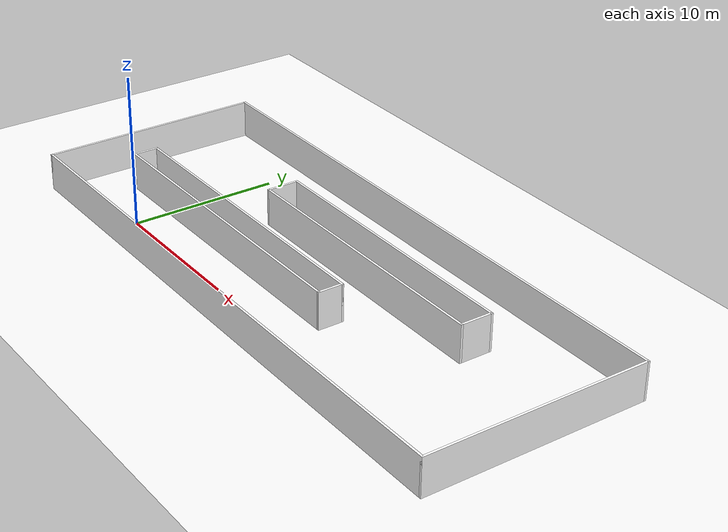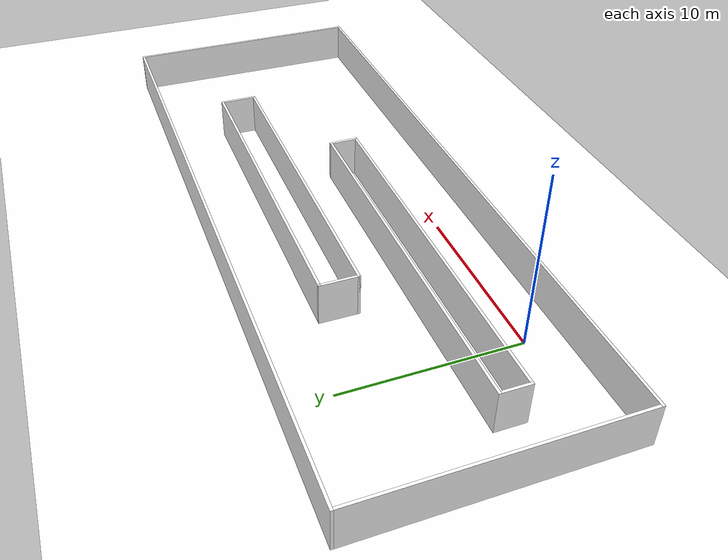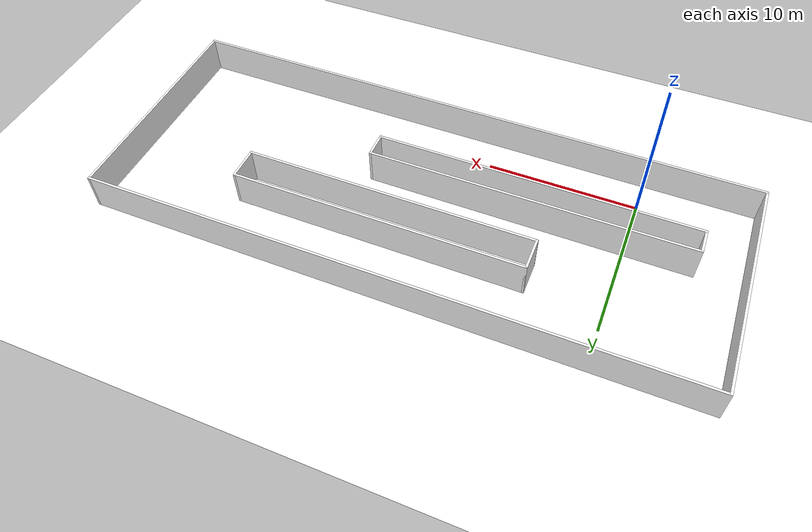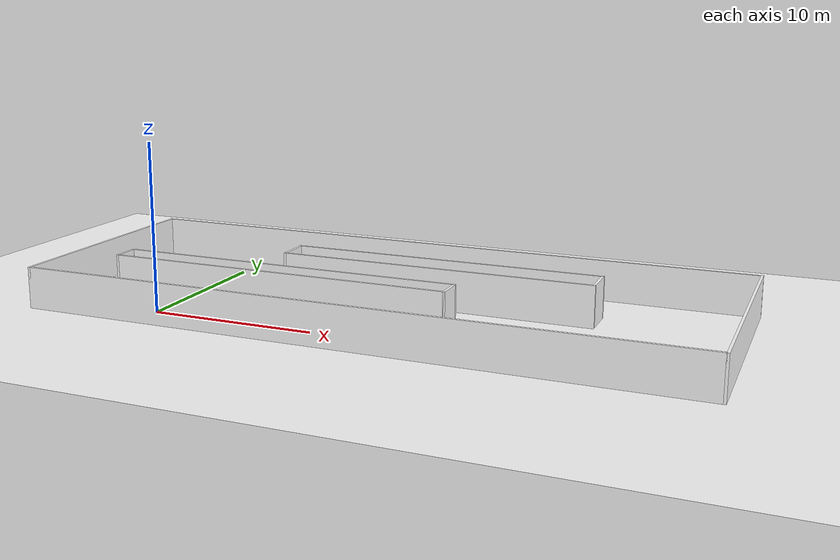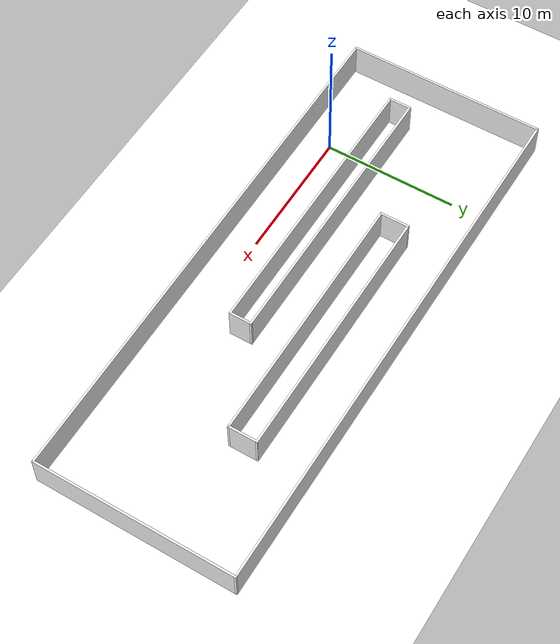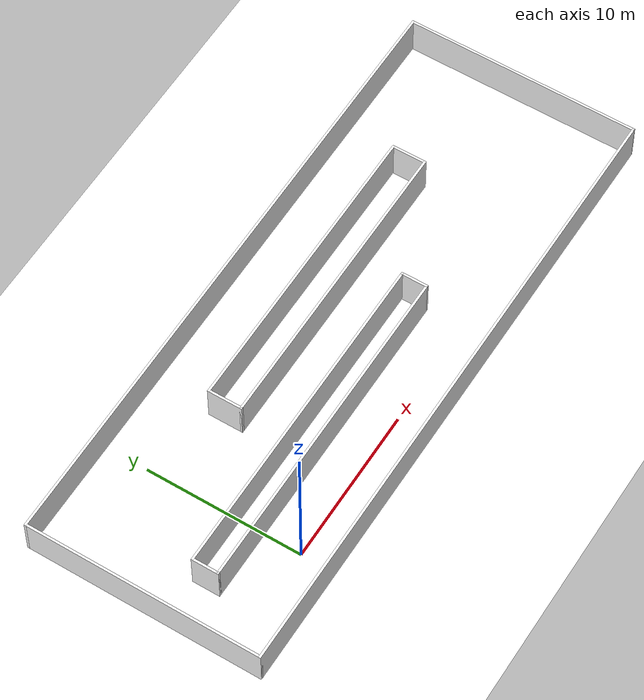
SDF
<sdf version="1.7">
 <world name="bug2_world">
  <light name="sun" type="directional">
   <pose>0 0 10 0 -0 0</pose>
   <diffuse>0.8 0.8 0.8 1</diffuse>
   <specular>0.2 0.2 0.2 1</specular>
   <attenuation>
    <range>1000</range>
    <constant>0.9</constant>
    <linear>0.01</linear>
    <quadratic>0.001</quadratic>
   </attenuation>
   <direction>-0.5 0.1 -0.9</direction>
   <spot><inner_angle>0</inner_angle><outer_angle>0</outer_angle><falloff>0</falloff></spot>
  </light>
  <model name="ground_plane">
   <static>1</static>
   <link name="link">
    <collision name="collision">
     <geometry><plane><normal>0 0 1</normal><size>100 100</size></plane></geometry>
     <surface>
      <contact><collide_bitmask>65535</collide_bitmask></contact>
      <friction><ode><mu>100</mu><mu2>50</mu2></ode></friction>
     </surface>
    </collision>
    <visual name="visual">
     <cast_shadows>0</cast_shadows>
     <geometry><plane><normal>0 0 1</normal><size>100 100</size></plane></geometry>
     <material><ambient>1 1 1 1</ambient><diffuse>1 1 1 1</diffuse><specular>0.1 0.1 0.1 1</specular></material>
    </visual>
   </link>
  </model>
  <gravity>0 0 -9.8</gravity>
  <magnetic_field>6e-06 2.3e-05 -4.2e-05</magnetic_field>
  <atmosphere type="adiabatic"/>
  <physics type="ode">
   <max_step_size>0.001</max_step_size>
   <real_time_factor>1</real_time_factor>
   <real_time_update_rate>1000</real_time_update_rate>
  </physics>
  <scene><ambient>0.4 0.4 0.4 1</ambient><background>0.7 0.7 0.7 1</background><shadows>1</shadows></scene>
  <spherical_coordinates>
   <surface_model>EARTH_WGS84</surface_model>
   <latitude_deg>0</latitude_deg>
   <longitude_deg>0</longitude_deg>
   <elevation>0</elevation>
   <heading_deg>0</heading_deg>
  </spherical_coordinates>
  <model name="bug2">
   <pose>12.5967 5.30375 0 0 -0 0</pose>
   <link name="Wall_11">
    <collision name="Wall_11_Collision">
     <geometry><box><size>40 0.15 2.5</size></box></geometry>
     <pose>0 0 1.25 0 -0 0</pose>
    </collision>
    <visual name="Wall_11_Visual">
     <pose>0 0 1.25 0 -0 0</pose>
     <geometry><box><size>40 0.15 2.5</size></box></geometry>
     <material><ambient>1 1 1 1</ambient><diffuse>1 1 1 1</diffuse><specular>0.1 0.1 0.1 1</specular></material>
     <meta><layer>0</layer></meta>
    </visual>
    <pose>0 7.425 0 0 -0 3.14159</pose>
   </link>
   <link name="Wall_12">
    <collision name="Wall_12_Collision">
     <geometry><box><size>15 0.15 2.5</size></box></geometry>
     <pose>0 0 1.25 0 -0 0</pose>
    </collision>
    <visual name="Wall_12_Visual">
     <pose>0 0 1.25 0 -0 0</pose>
     <geometry><box><size>15 0.15 2.5</size></box></geometry>
     <material><ambient>1 1 1 1</ambient><diffuse>1 1 1 1</diffuse><specular>0.1 0.1 0.1 1</specular></material>
     <meta><layer>0</layer></meta>
    </visual>
    <pose>-19.925 0 0 0 -0 -1.5708</pose>
   </link>
   <link name="Wall_17">
    <collision name="Wall_17_Collision">
     <geometry><box><size>21.5 0.15 2.5</size></box></geometry>
     <pose>0 0 1.25 0 -0 0</pose>
    </collision>
    <visual name="Wall_17_Visual">
     <pose>0 0 1.25 0 -0 0</pose>
     <geometry><box><size>21.5 0.15 2.5</size></box></geometry>
     <material><ambient>1 1 1 1</ambient><diffuse>1 1 1 1</diffuse><specular>0.1 0.1 0.1 1</specular></material>
     <meta><layer>0</layer></meta>
    </visual>
    <pose>-6.28608 -2.87668 0 0 -0 0</pose>
   </link>
   <link name="Wall_18">
    <collision name="Wall_18_Collision">
     <geometry><box><size>1.75 0.15 2.5</size></box></geometry>
     <pose>0 0 1.25 0 -0 0</pose>
    </collision>
    <visual name="Wall_18_Visual">
     <pose>0 0 1.25 0 -0 0</pose>
     <geometry><box><size>1.75 0.15 2.5</size></box></geometry>
     <material><ambient>1 1 1 1</ambient><diffuse>1 1 1 1</diffuse><specular>0.1 0.1 0.1 1</specular></material>
     <meta><layer>0</layer></meta>
    </visual>
    <pose>4.38892 -2.07668 0 0 -0 1.5708</pose>
   </link>
   <link name="Wall_19">
    <collision name="Wall_19_Collision">
     <geometry><box><size>21.5 0.15 2.5</size></box></geometry>
     <pose>0 0 1.25 0 -0 0</pose>
    </collision>
    <visual name="Wall_19_Visual">
     <pose>0 0 1.25 0 -0 0</pose>
     <geometry><box><size>21.5 0.15 2.5</size></box></geometry>
     <material><ambient>1 1 1 1</ambient><diffuse>1 1 1 1</diffuse><specular>0.1 0.1 0.1 1</specular></material>
     <meta><layer>0</layer></meta>
    </visual>
    <pose>-6.28608 -1.27668 0 0 -0 3.14159</pose>
   </link>
   <link name="Wall_20">
    <collision name="Wall_20_Collision">
     <geometry><box><size>1.75 0.15 2.5</size></box></geometry>
     <pose>0 0 1.25 0 -0 0</pose>
    </collision>
    <visual name="Wall_20_Visual">
     <pose>0 0 1.25 0 -0 0</pose>
     <geometry><box><size>1.75 0.15 2.5</size></box></geometry>
     <material><ambient>1 1 1 1</ambient><diffuse>1 1 1 1</diffuse><specular>0.1 0.1 0.1 1</specular></material>
     <meta><layer>0</layer></meta>
    </visual>
    <pose>-16.9611 -2.07668 0 0 -0 -1.5708</pose>
   </link>
   <link name="Wall_22">
    <collision name="Wall_22_Collision">
     <geometry><box><size>19.5 0.15 2.5</size></box></geometry>
     <pose>0 0 1.25 0 -0 0</pose>
    </collision>
    <visual name="Wall_22_Visual">
     <pose>0 0 1.25 0 -0 0</pose>
     <geometry><box><size>19.5 0.15 2.5</size></box></geometry>
     <material><ambient>1 1 1 1</ambient><diffuse>1 1 1 1</diffuse><specular>0.1 0.1 0.1 1</specular></material>
     <meta><layer>0</layer></meta>
    </visual>
    <pose>1.91233 3.70373 0 0 -0 0</pose>
   </link>
   <link name="Wall_23">
    <collision name="Wall_23_Collision">
     <geometry><box><size>2.25 0.15 2.5</size></box></geometry>
     <pose>0 0 1.25 0 -0 0</pose>
    </collision>
    <visual name="Wall_23_Visual">
     <pose>0 0 1.25 0 -0 0</pose>
     <geometry><box><size>2.25 0.15 2.5</size></box></geometry>
     <material><ambient>1 1 1 1</ambient><diffuse>1 1 1 1</diffuse><specular>0.1 0.1 0.1 1</specular></material>
     <meta><layer>0</layer></meta>
    </visual>
    <pose>11.5873 2.65373 0 0 -0 -1.5708</pose>
   </link>
   <link name="Wall_24">
    <collision name="Wall_24_Collision">
     <geometry><box><size>19.5 0.15 2.5</size></box></geometry>
     <pose>0 0 1.25 0 -0 0</pose>
    </collision>
    <visual name="Wall_24_Visual">
     <pose>0 0 1.25 0 -0 0</pose>
     <geometry><box><size>19.5 0.15 2.5</size></box></geometry>
     <material><ambient>1 1 1 1</ambient><diffuse>1 1 1 1</diffuse><specular>0.1 0.1 0.1 1</specular></material>
     <meta><layer>0</layer></meta>
    </visual>
    <pose>1.91233 1.60373 0 0 -0 3.14159</pose>
   </link>
   <link name="Wall_25">
    <collision name="Wall_25_Collision">
     <geometry><box><size>2.25 0.15 2.5</size></box></geometry>
     <pose>0 0 1.25 0 -0 0</pose>
    </collision>
    <visual name="Wall_25_Visual">
     <pose>0 0 1.25 0 -0 0</pose>
     <geometry><box><size>2.25 0.15 2.5</size></box></geometry>
     <material><ambient>1 1 1 1</ambient><diffuse>1 1 1 1</diffuse><specular>0.1 0.1 0.1 1</specular></material>
     <meta><layer>0</layer></meta>
    </visual>
    <pose>-7.76267 2.65373 0 0 -0 1.5708</pose>
   </link>
   <link name="Wall_7">
    <collision name="Wall_7_Collision">
     <geometry><box><size>40 0.15 2.5</size></box></geometry>
     <pose>0 0 1.25 0 -0 0</pose>
    </collision>
    <visual name="Wall_7_Visual">
     <pose>0 0 1.25 0 -0 0</pose>
     <geometry><box><size>40 0.15 2.5</size></box></geometry>
     <material><ambient>1 1 1 1</ambient><diffuse>1 1 1 1</diffuse><specular>0.1 0.1 0.1 1</specular></material>
     <meta><layer>0</layer></meta>
    </visual>
    <pose>0 -7.425 0 0 -0 0</pose>
   </link>
   <link name="Wall_8">
    <collision name="Wall_8_Collision">
     <geometry><box><size>15 0.15 2.5</size></box></geometry>
     <pose>0 0 1.25 0 -0 0</pose>
    </collision>
    <visual name="Wall_8_Visual">
     <pose>0 0 1.25 0 -0 0</pose>
     <geometry><box><size>15 0.15 2.5</size></box></geometry>
     <material><ambient>1 1 1 1</ambient><diffuse>1 1 1 1</diffuse><specular>0.1 0.1 0.1 1</specular></material>
     <meta><layer>0</layer></meta>
    </visual>
    <pose>19.925 0 0 0 -0 1.5708</pose>
   </link>
   <static>1</static>
  </model>
 </world>
</sdf>
